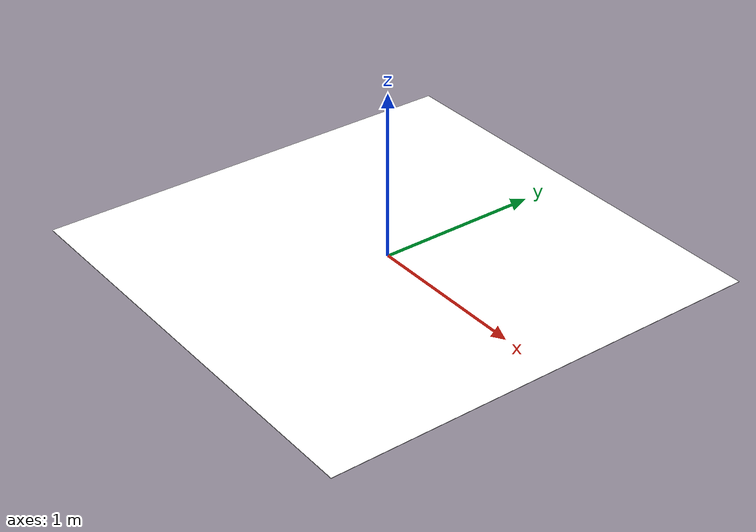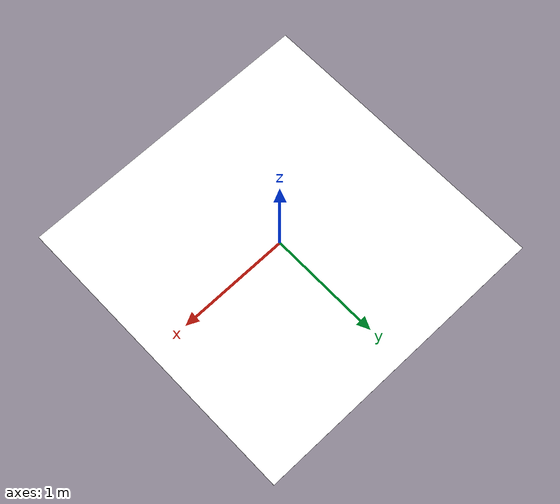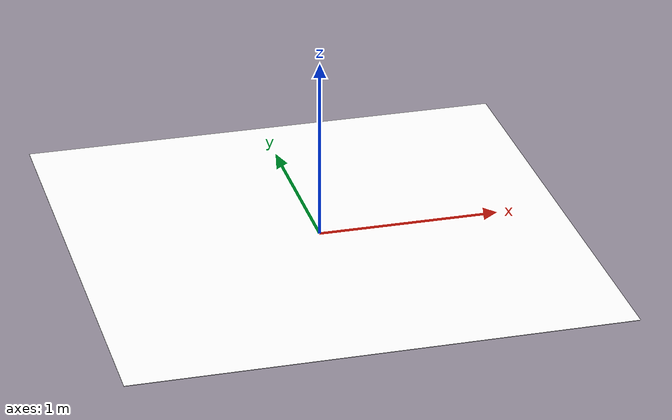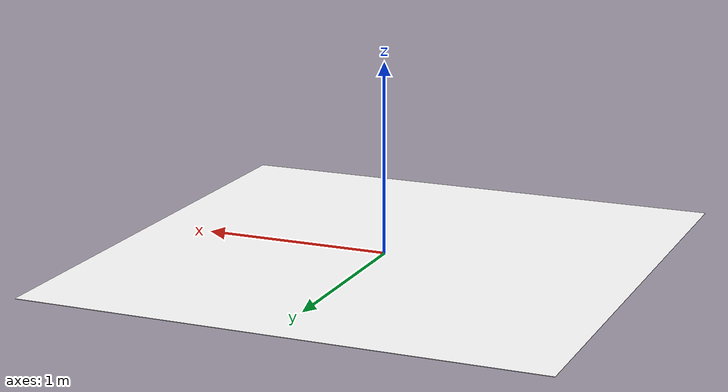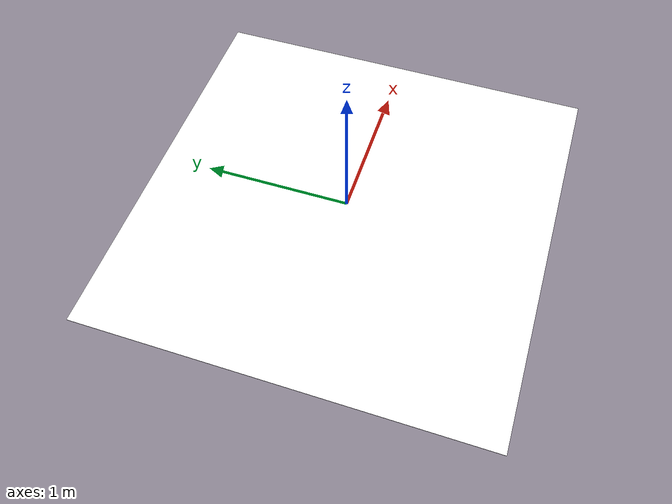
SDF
<?xml version="1.0" encoding="UTF-8"?>
<sdf version='1.9'>
  <model name='apriltag'>
    <static>true</static>
    <pose>0 0 0.001 0 0 0</pose>
    <link name='base'>
      <visual name='base_visual'>
        <geometry>
          <plane>
            <normal>0 0 1</normal>
            <size>2.7 2.7</size>
          </plane>
        </geometry>
        <material>
          <diffuse>1 1 1 1</diffuse>
          <specular>0.5 0.5 0.5 1</specular>
          <pbr>
            <metal>
              <albedo_map>model://apriltag/apriltag.png</albedo_map>
            </metal>
          </pbr>
        </material>
      </visual>
    </link>
  </model>
</sdf>
